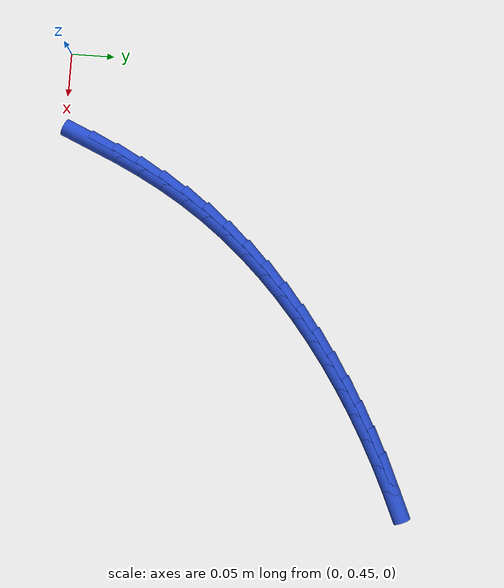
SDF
<sdf version="1.6">
 <world name="default">
  <model name="ground_plane">
   <static>1</static>
   <link name="link">
    <collision name="collision">
     <geometry><plane><normal>0 0 1</normal><size>100 100</size></plane></geometry>
     <surface><friction><ode><mu>100</mu><mu2>50</mu2></ode></friction></surface>
    </collision>
    <visual name="visual">
     <cast_shadows>0</cast_shadows>
     <geometry><plane><normal>0 0 1</normal><size>100 100</size></plane></geometry>
     <material>
      <script><uri>file://media/materials/scripts/gazebo.material</uri><name>Gazebo/WhiteGlow</name></script>
     </material>
    </visual>
   </link>
  </model>
  <model name="line">
   <link name="link_16">
    <pose>0.10489670435391017 0.4880459182089408 0.01 0 1.57 1.1613378274129564</pose>
    <collision name="collision">
     <geometry><cylinder><radius>0.01</radius><length>0.08</length></cylinder></geometry>
    </collision>
    <visual name="visual">
     <material>
      <script><name>Gazebo/Blue</name><uri>file://media/materials/scripts/gazebo.material</uri></script>
     </material>
     <geometry><cylinder><radius>0.01</radius><length>0.08</length></cylinder></geometry>
    </visual>
   </link>
   <link name="link_17">
    <pose>0.1173162635278791 0.5166632340382473 0.01 0 1.57 1.1209486049393367</pose>
    <collision name="collision">
     <geometry><cylinder><radius>0.01</radius><length>0.08</length></cylinder></geometry>
    </collision>
    <visual name="visual">
     <material>
      <script><name>Gazebo/Blue</name><uri>file://media/materials/scripts/gazebo.material</uri></script>
     </material>
     <geometry><cylinder><radius>0.01</radius><length>0.08</length></cylinder></geometry>
    </visual>
   </link>
   <link name="link_18">
    <pose>0.13082842823690818 0.5446464202970596 0.01 0 1.57 1.076158478595051</pose>
    <collision name="collision">
     <geometry><cylinder><radius>0.01</radius><length>0.08</length></cylinder></geometry>
    </collision>
    <visual name="visual">
     <material>
      <script><name>Gazebo/Blue</name><uri>file://media/materials/scripts/gazebo.material</uri></script>
     </material>
     <geometry><cylinder><radius>0.01</radius><length>0.08</length></cylinder></geometry>
    </visual>
   </link>
   <link name="link_19">
    <pose>0.14553394599151304 0.5719111595687173 0.01 0 1.57 1.0269817352253763</pose>
    <collision name="collision">
     <geometry><cylinder><radius>0.01</radius><length>0.08</length></cylinder></geometry>
    </collision>
    <visual name="visual">
     <material>
      <script><name>Gazebo/Blue</name><uri>file://media/materials/scripts/gazebo.material</uri></script>
     </material>
     <geometry><cylinder><radius>0.01</radius><length>0.08</length></cylinder></geometry>
    </visual>
   </link>
   <link name="link_20">
    <pose>0.16153356430220916 0.5983731344365608 0.01 0 1.57 0.9735250481433405</pose>
    <collision name="collision">
     <geometry><cylinder><radius>0.01</radius><length>0.08</length></cylinder></geometry>
    </collision>
    <visual name="visual">
     <material>
      <script><name>Gazebo/Blue</name><uri>file://media/materials/scripts/gazebo.material</uri></script>
     </material>
     <geometry><cylinder><radius>0.01</radius><length>0.08</length></cylinder></geometry>
    </visual>
   </link>
   <link name="link_21">
    <pose>0.17892803067951218 0.6239480274839294 0.01 0 1.57 0.9170099835365138</pose>
    <collision name="collision">
     <geometry><cylinder><radius>0.01</radius><length>0.08</length></cylinder></geometry>
    </collision>
    <visual name="visual">
     <material>
      <script><name>Gazebo/Blue</name><uri>file://media/materials/scripts/gazebo.material</uri></script>
     </material>
     <geometry><cylinder><radius>0.01</radius><length>0.08</length></cylinder></geometry>
    </visual>
   </link>
   <link name="link_22">
    <pose>0.19778789461691704 0.648562955459881 0.01 0 1.57 0.8622299062537365</pose>
    <collision name="collision">
     <geometry><cylinder><radius>0.01</radius><length>0.08</length></cylinder></geometry>
    </collision>
    <visual name="visual">
     <material>
      <script><name>Gazebo/Blue</name><uri>file://media/materials/scripts/gazebo.material</uri></script>
     </material>
     <geometry><cylinder><radius>0.01</radius><length>0.08</length></cylinder></geometry>
    </visual>
   </link>
   <link name="link_23">
    <pose>0.21804399486777634 0.6721979351351592 0.01 0 1.57 0.8104541867598475</pose>
    <collision name="collision">
     <geometry><cylinder><radius>0.01</radius><length>0.08</length></cylinder></geometry>
    </collision>
    <visual name="visual">
     <material>
      <script><name>Gazebo/Blue</name><uri>file://media/materials/scripts/gazebo.material</uri></script>
     </material>
     <geometry><cylinder><radius>0.01</radius><length>0.08</length></cylinder></geometry>
    </visual>
   </link>
   <link name="link_24">
    <pose>0.23958679473479041 0.6948482710258387 0.01 0 1.57 0.7615419906599273</pose>
    <collision name="collision">
     <geometry><cylinder><radius>0.01</radius><length>0.08</length></cylinder></geometry>
    </collision>
    <visual name="visual">
     <material>
      <script><name>Gazebo/Blue</name><uri>file://media/materials/scripts/gazebo.material</uri></script>
     </material>
     <geometry><cylinder><radius>0.01</radius><length>0.08</length></cylinder></geometry>
    </visual>
   </link>
   <link name="link_25">
    <pose>0.2623067535381841 0.716509269155916 0.01 0 1.57 0.7153153398035537</pose>
    <collision name="collision">
     <geometry><cylinder><radius>0.01</radius><length>0.08</length></cylinder></geometry>
    </collision>
    <visual name="visual">
     <material>
      <script><name>Gazebo/Blue</name><uri>file://media/materials/scripts/gazebo.material</uri></script>
     </material>
     <geometry><cylinder><radius>0.01</radius><length>0.08</length></cylinder></geometry>
    </visual>
   </link>
   <link name="link_26">
    <pose>0.28609433059818234 0.7371762355493882 0.01 0 1.57 0.6715719250338176</pose>
    <collision name="collision">
     <geometry><cylinder><radius>0.01</radius><length>0.08</length></cylinder></geometry>
    </collision>
    <visual name="visual">
     <material>
      <script><name>Gazebo/Blue</name><uri>file://media/materials/scripts/gazebo.material</uri></script>
     </material>
     <geometry><cylinder><radius>0.01</radius><length>0.08</length></cylinder></geometry>
    </visual>
   </link>
   <link name="link_27">
    <pose>0.3108399852350104 0.7568444762302526 0.01 0 1.57 0.6300948642467511</pose>
    <collision name="collision">
     <geometry><cylinder><radius>0.01</radius><length>0.08</length></cylinder></geometry>
    </collision>
    <visual name="visual">
     <material>
      <script><name>Gazebo/Blue</name><uri>file://media/materials/scripts/gazebo.material</uri></script>
     </material>
     <geometry><cylinder><radius>0.01</radius><length>0.08</length></cylinder></geometry>
    </visual>
   </link>
   <link name="link_28">
    <pose>0.33643417676889287 0.7755092972225057 0.01 0 1.57 0.5906597451188239</pose>
    <collision name="collision">
     <geometry><cylinder><radius>0.01</radius><length>0.08</length></cylinder></geometry>
    </collision>
    <visual name="visual">
     <material>
      <script><name>Gazebo/Blue</name><uri>file://media/materials/scripts/gazebo.material</uri></script>
     </material>
     <geometry><cylinder><radius>0.01</radius><length>0.08</length></cylinder></geometry>
    </visual>
   </link>
   <link name="link_29">
    <pose>0.3627673645200548 0.7931660045501447 0.01 0 1.57 0.5530393051871895</pose>
    <collision name="collision">
     <geometry><cylinder><radius>0.01</radius><length>0.08</length></cylinder></geometry>
    </collision>
    <visual name="visual">
     <material>
      <script><name>Gazebo/Blue</name><uri>file://media/materials/scripts/gazebo.material</uri></script>
     </material>
     <geometry><cylinder><radius>0.01</radius><length>0.08</length></cylinder></geometry>
    </visual>
   </link>
   <link name="link_30">
    <pose>0.38973000780872136 0.8098099042371668 0.01 0 1.57 0.5170061355439763</pose>
    <collision name="collision">
     <geometry><cylinder><radius>0.01</radius><length>0.08</length></cylinder></geometry>
    </collision>
    <visual name="visual">
     <material>
      <script><name>Gazebo/Blue</name><uri>file://media/materials/scripts/gazebo.material</uri></script>
     </material>
     <geometry><cylinder><radius>0.01</radius><length>0.08</length></cylinder></geometry>
    </visual>
   </link>
   <link name="link_31">
    <pose>0.41721256595511735 0.8254363023075686 0.01 0 1.57 0.4823337613582908</pose>
    <collision name="collision">
     <geometry><cylinder><radius>0.01</radius><length>0.08</length></cylinder></geometry>
    </collision>
    <visual name="visual">
     <material>
      <script><name>Gazebo/Blue</name><uri>file://media/materials/scripts/gazebo.material</uri></script>
     </material>
     <geometry><cylinder><radius>0.01</radius><length>0.08</length></cylinder></geometry>
    </visual>
   </link>
   <link name="link_32">
    <pose>0.44510549827946794 0.8400405047853473 0.01 0 1.57 0.44879773484372965</pose>
    <collision name="collision">
     <geometry><cylinder><radius>0.01</radius><length>0.08</length></cylinder></geometry>
    </collision>
    <visual name="visual">
     <material>
      <script><name>Gazebo/Blue</name><uri>file://media/materials/scripts/gazebo.material</uri></script>
     </material>
     <geometry><cylinder><radius>0.01</radius><length>0.08</length></cylinder></geometry>
    </visual>
   </link>
   <link name="link_33">
    <pose>0.4732992762979598 0.8536178704643717 0.01 0 1.57 0.41785313241853755</pose>
    <collision name="collision">
     <geometry><cylinder><radius>0.01</radius><length>0.08</length></cylinder></geometry>
    </collision>
    <visual name="visual">
     <material>
      <script><name>Gazebo/Blue</name><uri>file://media/materials/scripts/gazebo.material</uri></script>
     </material>
     <geometry><cylinder><radius>0.01</radius><length>0.08</length></cylinder></geometry>
    </visual>
   </link>
  </model>
 </world>
</sdf>
